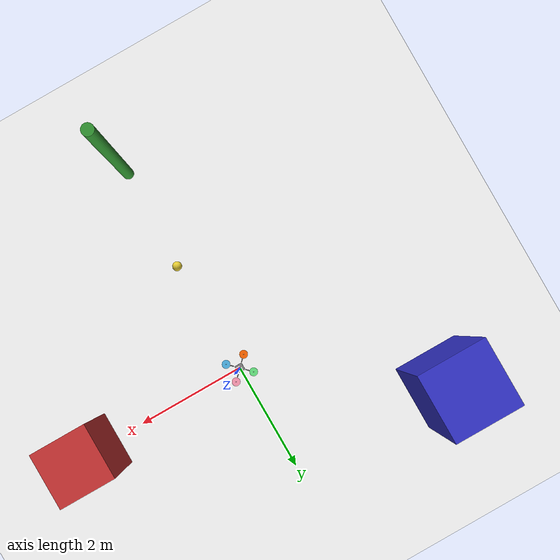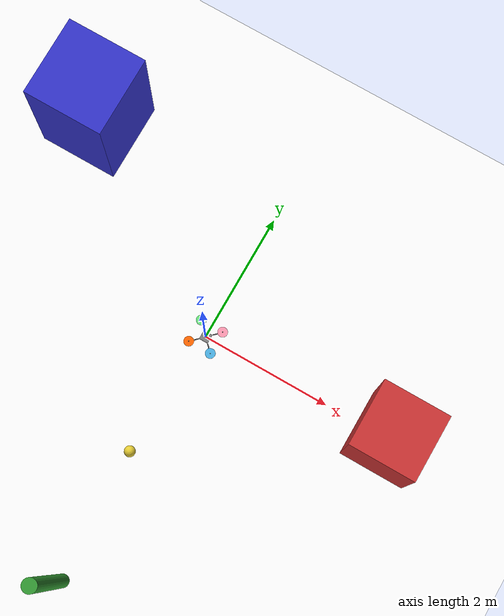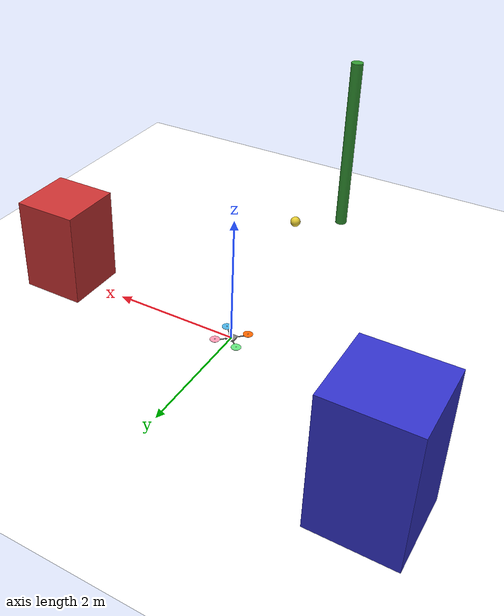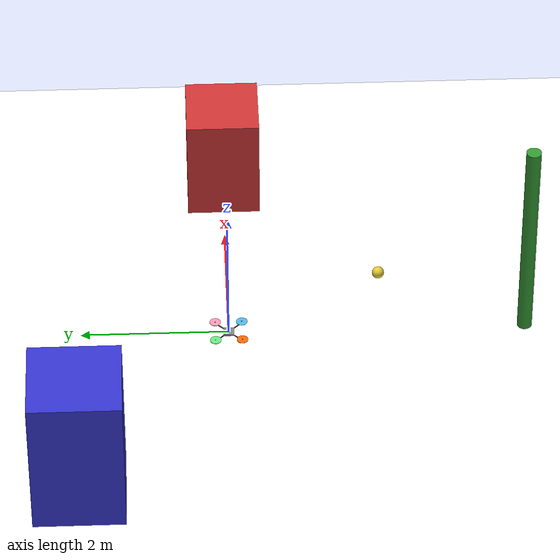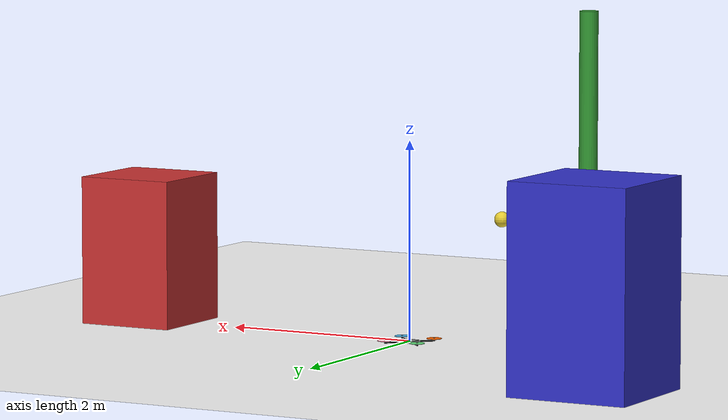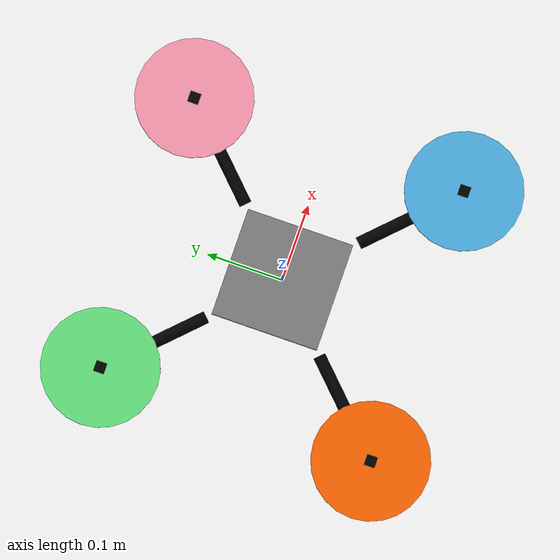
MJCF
<mujoco>
  <option timestep="0.001" density="1.204" viscosity="0.05" integrator="Euler" gravity="0 0 -9.81"/>
  <size nstack="4000000" nconmax="50000"/>
  <visual>
    <global elevation="-10"/>
  </visual>

  <default>
    <tendon limited="true" width="0.003" rgba="1 1 1 1"/>
    <geom friction=".2"/>
    <default class="weight">
      <geom rgba=".8 .4 .8 1"/>
      <site rgba=".8 .4 .8 1"/>
    </default>
    <default class="drone">
      <geom density="0.167" fluidshape="ellipsoid" friction="0.5 0.5 0.5"/>
      <default class="pink">
        <geom rgba="1 .6 .7 1"/>
        <site rgba="1 .6 .7 1"/>
      </default>
      <default class="blue">
        <geom rgba=".3 .7 .9 1"/>
        <site rgba=".3 .7 .9 1"/>
      </default>
      <default class="black">
        <geom rgba="0 0 0 1"/>
        <site rgba="0 0 0 1"/>
      </default>
      <default class="gray">
        <geom rgba=".5 .5 .5 1"/>
        <site rgba=".5 .5 .5 1"/>
      </default>
      <default class="green">
        <geom rgba=".4 .9 .5 1"/>
        <site rgba=".4 .9 .5 1"/>
      </default>
      <default class="orange">
        <geom rgba="1 .4 0 1"/>
        <site rgba="1 .4 0 1"/>
      </default>
    </default>
  </default>

  <asset>
    <texture name="grid" type="2d" builtin="checker" width="512" height="512" rgb1="1 1 1" rgb2="1 1 1"/>
    <material name="white_ground" texture="grid" reflectance="0"/>
  </asset>

  <worldbody>
    <light diffuse="1 1 1" specular="0.5 0.5 0.5" pos="0 0 5"/>
    <geom name="ground" type="plane" size="20 20 .01" pos="0 0 0" material="white_ground"/>

    <!-- Example landmarks for depth perception -->
    <body name="landmark_box_1" pos="3 0 0.75">
      <geom name="landmark_box_1_geom" type="box" size="0.5 0.5 0.75" rgba="0.8 0.2 0.2 1"/>
    </body>
    <body name="landmark_box_2" pos="-3 2 1.0">
      <geom name="landmark_box_2_geom" type="box" size="0.6 0.6 1.0" rgba="0.2 0.2 0.8 1"/>
    </body>
    <body name="landmark_pole" pos="0 -4 1.5">
      <geom name="landmark_pole_geom" type="cylinder" size="0.1 1.5" rgba="0.2 0.6 0.2 1"/>
    </body>

    <!-- ========= Ball #1 ========= -->
    <body name="Ball-1" pos="0 -2 1.0">
      <freejoint name="Ball-1_free"/>
      <geom name="Ball-1_geom" type="sphere" size="0.08" density="500" rgba="0.9 0.8 0.2 1"/>
    </body>

    <!-- ========= Drone #1 ========= -->
    <body name="d1_b_drone_base" pos="0 0 0.0" childclass="gray">
      <freejoint name="d1_j_free"/>
      <geom name="d1_g_base" type="box" size="0.07 0.07 0.015" density="810" friction="0.001 0.001 0.001"/>

      <body name="d1_b_arm1" pos="0.13 -0.13 0" childclass="black">
        <geom name="d1_g_arm1" type="cylinder" size="0.008 0.077" euler="90 45 0" density="500"/>
        <body name="d1_b_p1" pos="0.05 -0.05 0.02" childclass="blue">
          <geom name="d1_g_prop1" type="cylinder" size="0.076 0.0025" density="200"/>
        </body>
      </body>
      <body name="d1_b_prop1" pos="0.18 -0.18 0.02" childclass="black">
        <geom name="d1_g_p1" type="box" size="0.007 0.007 0.007" density="500"/>
      </body>

      <body name="d1_b_arm2" pos="-0.13 0.13 0" childclass="black">
        <geom name="d1_g_arm2" type="cylinder" size="0.008 0.077" euler="90 45 0" density="500"/>
        <body name="d1_b_p2" pos="-0.05 0.05 0.02" childclass="green" gravcomp="0.0">
          <geom name="d1_g_prop2" type="cylinder" size="0.076 0.0025" density="200"/>
        </body>
      </body>
      <body name="d1_b_prop2" pos="-0.18 0.18 0.02" childclass="black">
        <geom name="d1_g_p2" type="box" size="0.007 0.007 0.007" density="500"/>
      </body>

      <body name="d1_b_arm3" pos="0.13 0.13 0" childclass="black">
        <geom name="d1_g_arm3" type="cylinder" size="0.008 0.077" euler="90 -45 0" density="500"/>
        <body name="d1_b_p3" pos="0.05 0.05 0.02" childclass="pink">
          <geom name="d1_g_prop3" type="cylinder" size="0.076 0.0025" density="200"/>
        </body>
      </body>
      <body name="d1_b_prop3" pos="0.18 0.18 0.02" childclass="black">
        <geom name="d1_g_p3" type="box" size="0.007 0.007 0.007" density="500"/>
      </body>

      <body name="d1_b_arm4" pos="-0.13 -0.13 0" childclass="black">
        <geom name="d1_g_arm4" type="cylinder" size="0.008 0.077" euler="90 -45 0" density="500"/>
        <body name="d1_b_p4" pos="-0.05 -0.05 0.02" childclass="orange">
          <geom name="d1_g_prop4" type="cylinder" size="0.076 0.0025" density="200"/>
        </body>
      </body>
      <body name="d1_b_prop4" pos="-0.18 -0.18 0.02" childclass="black">
        <geom name="d1_g_p4" type="box" size="0.007 0.007 0.007" density="500"/>
      </body>

      <body name="d1_b_reg1" pos="-0.1 0.1 -0.10" childclass="black">
        <geom name="d1_g_reg1" type="cylinder" size="0.008 0.077" euler="20 0 0" density="500"/>
      </body>
      <body name="d1_b_reg2" pos="0.1 0.1 -0.10" childclass="black">
        <geom name="d1_g_reg2" type="cylinder" size="0.008 0.077" euler="20 0 0" density="500"/>
      </body>
      <body name="d1_b_reg3" pos="-0.1 -0.1 -0.10" childclass="black">
        <geom name="d1_g_reg3" type="cylinder" size="0.008 0.077" euler="-20 0 0" density="500"/>
      </body>
      <body name="d1_b_reg4" pos="0.1 -0.1 -0.10" childclass="black">
        <geom name="d1_g_reg4" type="cylinder" size="0.008 0.077" euler="-20 0 0" density="500"/>
      </body>

      <body name="d1_b_reg_bottom1" pos="0.0 -0.13 -0.18" childclass="pink">
        <geom name="d1_g_reg_bottom1" type="cylinder" size="0.008 0.13" euler="0 90 0" density="500"/>
      </body>
      <body name="d1_b_reg_bottom2" pos="0.0 0.13 -0.18" childclass="pink">
        <geom name="d1_g_reg_bottom2" type="cylinder" size="0.008 0.13" euler="0 90 0" density="500"/>
      </body>
    </body>

    <!-- ========= Drone #2 ========= -->
    <body name="d2_b_drone_base" pos="0 0 0.0" childclass="gray">
      <freejoint name="d2_j_free"/>
      <geom name="d2_g_base" type="box" size="0.07 0.07 0.015" density="810" friction="0.001 0.001 0.001"/>

      <body name="d2_b_arm1" pos="0.13 -0.13 0" childclass="black">
        <geom name="d2_g_arm1" type="cylinder" size="0.008 0.077" euler="90 45 0" density="500"/>
        <body name="d2_b_p1" pos="0.05 -0.05 0.02" childclass="blue">
          <geom name="d2_g_prop1" type="cylinder" size="0.076 0.0025" density="200"/>
        </body>
      </body>
      <body name="d2_b_prop1" pos="0.18 -0.18 0.02" childclass="black">
        <geom name="d2_g_p1" type="box" size="0.007 0.007 0.007" density="500"/>
      </body>

      <body name="d2_b_arm2" pos="-0.13 0.13 0" childclass="black">
        <geom name="d2_g_arm2" type="cylinder" size="0.008 0.077" euler="90 45 0" density="500"/>
        <body name="d2_b_p2" pos="-0.05 0.05 0.02" childclass="green" gravcomp="0.0">
          <geom name="d2_g_prop2" type="cylinder" size="0.076 0.0025" density="200"/>
        </body>
      </body>
      <body name="d2_b_prop2" pos="-0.18 0.18 0.02" childclass="black">
        <geom name="d2_g_p2" type="box" size="0.007 0.007 0.007" density="500"/>
      </body>

      <body name="d2_b_arm3" pos="0.13 0.13 0" childclass="black">
        <geom name="d2_g_arm3" type="cylinder" size="0.008 0.077" euler="90 -45 0" density="500"/>
        <body name="d2_b_p3" pos="0.05 0.05 0.02" childclass="pink">
          <geom name="d2_g_prop3" type="cylinder" size="0.076 0.0025" density="200"/>
        </body>
      </body>
      <body name="d2_b_prop3" pos="0.18 0.18 0.02" childclass="black">
        <geom name="d2_g_p3" type="box" size="0.007 0.007 0.007" density="500"/>
      </body>

      <body name="d2_b_arm4" pos="-0.13 -0.13 0" childclass="black">
        <geom name="d2_g_arm4" type="cylinder" size="0.008 0.077" euler="90 -45 0" density="500"/>
        <body name="d2_b_p4" pos="-0.05 -0.05 0.02" childclass="orange">
          <geom name="d2_g_prop4" type="cylinder" size="0.076 0.0025" density="200"/>
        </body>
      </body>
      <body name="d2_b_prop4" pos="-0.18 -0.18 0.02" childclass="black">
        <geom name="d2_g_p4" type="box" size="0.007 0.007 0.007" density="500"/>
      </body>

      <body name="d2_b_reg1" pos="-0.1 0.1 -0.10" childclass="black">
        <geom name="d2_g_reg1" type="cylinder" size="0.008 0.077" euler="20 0 0" density="500"/>
      </body>
      <body name="d2_b_reg2" pos="0.1 0.1 -0.10" childclass="black">
        <geom name="d2_g_reg2" type="cylinder" size="0.008 0.077" euler="20 0 0" density="500"/>
      </body>
      <body name="d2_b_reg3" pos="-0.1 -0.1 -0.10" childclass="black">
        <geom name="d2_g_reg3" type="cylinder" size="0.008 0.077" euler="-20 0 0" density="500"/>
      </body>
      <body name="d2_b_reg4" pos="0.1 -0.1 -0.10" childclass="black">
        <geom name="d2_g_reg4" type="cylinder" size="0.008 0.077" euler="-20 0 0" density="500"/>
      </body>

      <body name="d2_b_reg_bottom1" pos="0.0 -0.13 -0.18" childclass="pink">
        <geom name="d2_g_reg_bottom1" type="cylinder" size="0.008 0.13" euler="0 90 0" density="500"/>
      </body>
      <body name="d2_b_reg_bottom2" pos="0.0 0.13 -0.18" childclass="pink">
        <geom name="d2_g_reg_bottom2" type="cylinder" size="0.008 0.13" euler="0 90 0" density="500"/>
      </body>
    </body>
  </worldbody>
</mujoco>
